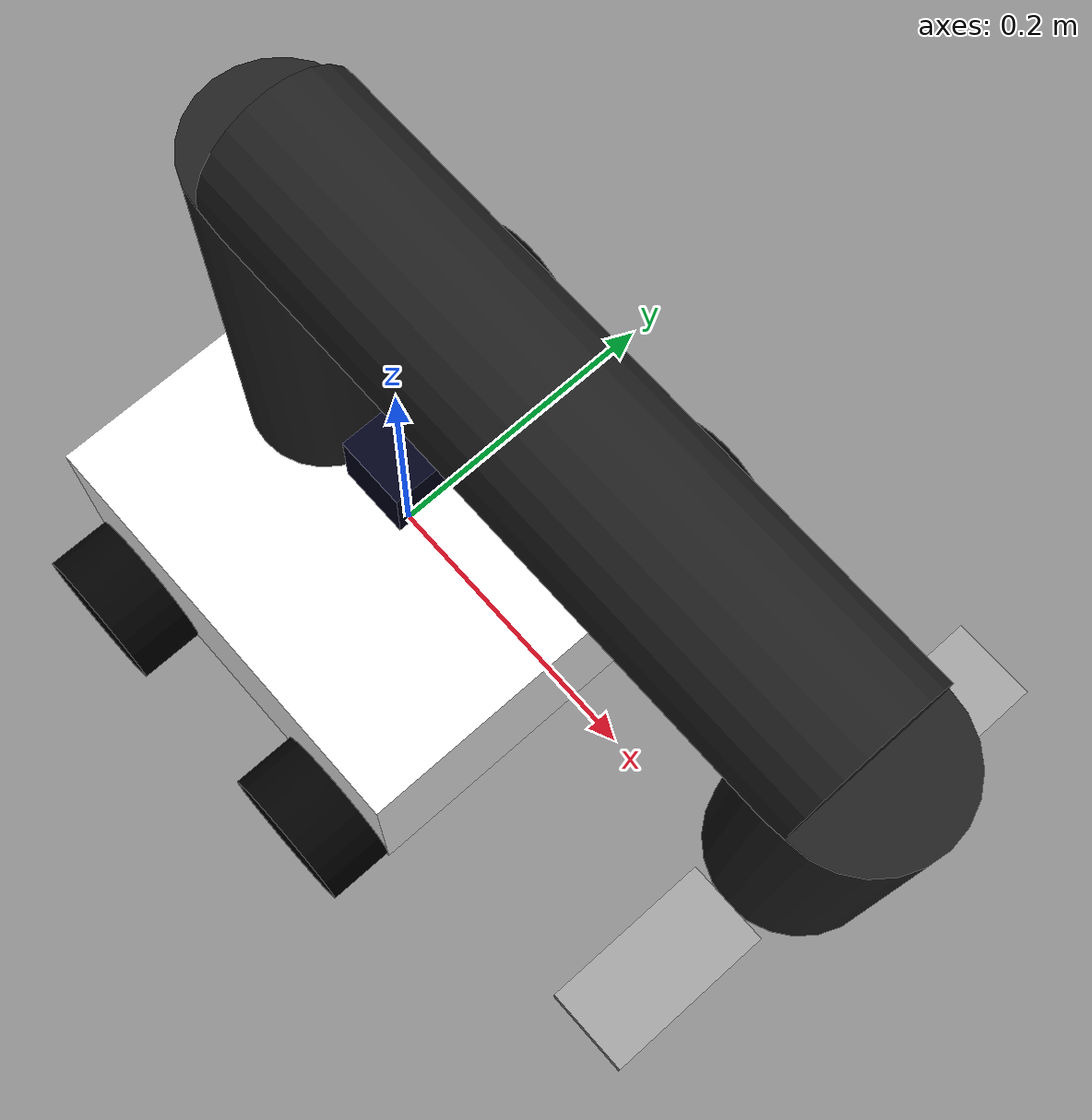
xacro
<?xml version="1.0"?>
<robot name="mobilearmbot" xmlns:xacro="http://ros.org/wiki/xacro">

	<xacro:include filename="$(find mobilearmbot_description)/urdf/colours.xacro"/>
	<xacro:include filename="$(find mobilearmbot_description)/urdf/mobilearmbot.gazebo.xacro"/>
	<xacro:include filename="$(find mobilearmbot_description)/urdf/inertias.xacro"/>

	<!-- Constants for drivebase -->
	<xacro:property name="base_length" value="0.3"/>
	<xacro:property name="base_width" value="0.3"/>
	<xacro:property name="base_height" value="0.15"/>
	<xacro:property name="base_mass" value="3.0"/>

	<!-- Constants & definition for the four wheels -->
	<xacro:property name="wheel_diam" value="0.1"/>
	<xacro:property name="wheel_length" value="0.05"/>
	<xacro:property name="wheel_mass" value="1"/>
	<xacro:property name="wheel_base_offset" value="0.02"/>
	<xacro:property name="pi" value="3.1415"/>
	<xacro:property name="wheel_df" value="0.0"/>

	<xacro:macro name="wheel_link_description">
		<visual>
			<origin rpy="${pi/2} 0 0" xyz="0 0 0"/>
			<geometry>
				<cylinder length="${wheel_length}" radius="${wheel_diam/2.0}"/>
			</geometry>
			<material name="black"/>
		</visual>
		<collision>
			<origin rpy="${pi/2} 0 0" xyz="0 0 0"/>
			<geometry>
				<cylinder length="${wheel_length}" radius="${wheel_diam/2.0}"/>
			</geometry>
		</collision>
		<inertial>
			<mass value="${wheel_mass}"/>
			<xacro:cylinder_inertia mass="${wheel_mass}" length="${wheel_length}" radius="${wheel_diam/2.0}"/>
		</inertial>
	</xacro:macro>

	<!-- Constants for laser scan-->
	<xacro:property name="scan_length" value="0.05"/>
	<xacro:property name="scan_width" value="0.05"/>
	<xacro:property name="scan_height" value="0.05"/>
	<xacro:property name="scan_mass" value="0.1"/>

	<!-- Constants for arm links -->
	<xacro:property name="link_radii" value="0.05"/> <!-- All links will have the same radius -->
	<xacro:property name="arm_link1_length" value="0.3"/>
	<xacro:property name="arm_link2_length" value="0.4"/>
	<xacro:property name="arm_link1_mass" value="1.2"/>
	<xacro:property name="arm_link2_mass" value="1.6"/>
	<xacro:property name="arm_link3_length" value="0.2"/>
	<xacro:property name="arm_link3_mass" value="0.8"/>

	<!-- this is used wherever necessary for all joints -->
	<xacro:macro name="Transmission" params="joint">
		<transmission name="trans_${joint}">
			<type>transmission_interface/SimpleTransmission</type>
			<joint name="${joint}">
				<hardwareInterface>hardware_interface/PositionJointInterface</hardwareInterface>
			</joint>
			<actuator name="${joint}_motor">
				<hardwareInterface>hardware_interface/PositionJointInterface</hardwareInterface>
				<mechanicalReduction>1</mechanicalReduction>
			</actuator>
		</transmission>
	</xacro:macro>

	<!-- Constants for end effector -->
	<xacro:property name="end_effector_length" value="0.1"/>
	<xacro:property name="end_effector_width" value="0.05"/>
	<xacro:property name="end_effector_height" value="0.01"/>
	<xacro:property name="end_effector_mass" value="0.1"/>

	<!--Fixed Frame-->
	<link name="odom">
	</link>

	<!-- Base link -->
	<link name="base_link">
		<visual>
			<origin rpy="0 0 0" xyz="0 0 0"/>
			<geometry>
				<box size="${base_length} ${base_width} ${base_height}"/>
			</geometry>
			<material name="white"/>
		</visual>
		<collision>
			<origin rpy="0 0 0" xyz="0 0 0"/>
			<geometry>
				<box size="${base_length} ${base_width} ${base_height}"/>
			</geometry>
		</collision>
		<inertial>
			<mass value="${base_mass}"/>
			<xacro:box_inertia mass="${base_mass}" length="${base_length}" width="${base_width}" height="${base_height}"/>
		</inertial>
	</link>
	<joint name="odom_joint" type="fixed">
		<parent link="odom"/>
		<child link="base_link"/>
	</joint>

	<!-- Right front wheel -->
	<link name="right_front_wheel">
		<xacro:wheel_link_description />
	</link>
	<joint name="right_front_wheel_joint" type="continuous">
		<parent link="base_link"/>
		<child link="right_front_wheel"/>
		<origin xyz="${base_length/3.0} ${-base_width/2.0 - wheel_base_offset} ${-base_height/2.5}" rpy="0 0 0"/>
		<axis xyz="0 1 0"/>
		<dynamics damping="${wheel_df}"/>
	</joint>
	<xacro:Transmission joint="right_front_wheel_joint"/>

	<!-- Right back wheel -->
	<link name="right_back_wheel">
		<xacro:wheel_link_description />
	</link>
	<joint name="right_back_wheel_joint" type="continuous">
		<parent link="base_link"/>
		<child link="right_back_wheel"/>
		<origin xyz="${-base_length/3.0} ${-base_width/2.0 - wheel_base_offset} ${-base_height/2.5}" rpy="0 0 0"/>
		<axis xyz="0 1 0"/>
		<dynamics damping="${wheel_df}"/>
	</joint>
	<xacro:Transmission joint="right_back_wheel_joint"/>

	<!-- Left front wheel -->
	<link name="left_front_wheel">
		<xacro:wheel_link_description />
	</link>
	<joint name="left_front_wheel_joint" type="continuous">
		<parent link="base_link"/>
		<child link="left_front_wheel"/>
		<origin xyz="${base_length/3.0} ${base_width/2.0 + wheel_base_offset} ${-base_height/2.5}" rpy="0 0 0"/>
		<axis xyz="0 1 0"/>
		<dynamics damping="${wheel_df}"/>
	</joint>
	<xacro:Transmission joint="left_front_wheel_joint"/>

	<!-- Left back wheel -->
	<link name="left_back_wheel">
		<xacro:wheel_link_description />
	</link>
	<joint name="left_back_wheel_joint" type="continuous">
		<parent link="base_link"/>
		<child link="left_back_wheel"/>
		<origin xyz="${-base_length/3.0} ${base_width/2.0 + wheel_base_offset} ${-base_height/2.5}" rpy="0 0 0"/>
		<axis xyz="0 1 0"/>
		<dynamics damping="${wheel_df}"/>
	</joint>
	<xacro:Transmission joint="left_back_wheel_joint"/>

	<link name="base_scan">
		<visual>
			<origin rpy="0 0 0" xyz="0 0 0"/>
			<geometry>
				<box size="${scan_length} ${scan_width} ${scan_height}"/>
			</geometry>
			<material name="blue"/>
		</visual>
		<collision>
			<origin rpy="0 0 0" xyz="0 0 0"/>
			<geometry>
				<box size="${scan_length} ${scan_width} ${scan_height}"/>
			</geometry>
		</collision>
		<inertial>
			<mass value="${scan_mass}"/>
			<xacro:box_inertia mass="${scan_mass}" length="${scan_length}" width="${scan_width}" height="${scan_height}"/>
		</inertial>
	</link>
	<joint name="base_scan_joint" type="fixed">
		<parent link="base_link"/>
		<child link="base_scan"/>
		<origin xyz="0.0 0 ${scan_height/2.0 + base_height/2.0}" rpy="0 0 0"/>
	</joint>

	<link name="arm_link1">
		<visual>
			<origin rpy="0 0 0" xyz="0 0 ${arm_link1_length/2.0}"/>
			<geometry>
				<cylinder length="${arm_link1_length}" radius="${link_radii}"/>
			</geometry>
		</visual>
		<collision>
			<origin rpy="0 0 0" xyz="0 0 ${arm_link1_length/2.0}"/>
			<geometry>
				<cylinder length="${arm_link1_length}" radius="${link_radii}"/>
			</geometry>
		</collision>
		<inertial>
			<mass value="${arm_link1_mass}"/>
			<xacro:cylinder_inertia mass="${arm_link1_mass}" length="${arm_link1_length}" radius="${link_radii}"/>
		</inertial>
	</link>
	<joint name="arm_link1_joint" type="continuous">
		<parent link="base_link"/>
		<child link="arm_link1"/>
		<origin rpy="0 0 0" xyz="${-base_height/2.0} 0 ${base_height/2.0}"/>
		<axis xyz="0 0 1"/>
	</joint>
	<xacro:Transmission joint="arm_link1_joint"/>

	<link name="arm_link2">
		<visual>
			<origin rpy="0 0 0" xyz="0 0 ${arm_link2_length/2.0}"/>
			<geometry>
				<cylinder length="${arm_link2_length}" radius="${link_radii}"/>
			</geometry>
		</visual>
		<collision>
			<origin rpy="0 0 0" xyz="0 0 ${arm_link2_length/2.0}"/>
			<geometry>
				<cylinder length="${arm_link2_length}" radius="${link_radii}"/>
			</geometry>
		</collision>
		<inertial>
			<mass value="${arm_link2_mass}"/>
			<xacro:cylinder_inertia mass="${arm_link2_mass}" length="${arm_link2_length}" radius="${link_radii}"/>
		</inertial>
	</link>

	<joint name="arm_link2_joint" type="continuous">
		<parent link="arm_link1"/>
		<child link="arm_link2"/>
		<origin rpy="0 ${pi/2} 0" xyz="0 0 ${arm_link1_length}"/>
		<axis xyz="0 1 0"/>
	</joint>
	<xacro:Transmission joint="arm_link2_joint"/>

	<link name="arm_link3">
		<visual>
			<origin rpy="0 0 0" xyz="0 0 ${arm_link3_length/2.0}"/>
			<geometry>
				<cylinder length="${arm_link3_length}" radius="${link_radii}"/>
			</geometry>
		</visual>
		<collision>
			<origin rpy="0 0 0" xyz="0 0 ${arm_link3_length/2.0}"/>
			<geometry>
				<cylinder length="${arm_link3_length}" radius="${link_radii}"/>
			</geometry>
		</collision>
		<inertial>
			<mass value="${arm_link3_mass}"/>
			<xacro:cylinder_inertia mass="${arm_link3_mass}" length="${arm_link3_length}" radius="${link_radii}"/>
		</inertial>
	</link>
	<joint name="arm_link3_joint" type="continuous">
		<parent link="arm_link2"/>
		<child link="arm_link3"/>
		<origin rpy="0 ${pi/2} 0" xyz="0 0 ${arm_link2_length}"/>
		<axis xyz="0 1 0"/>
	</joint>
	<xacro:Transmission joint="arm_link3_joint"/>

	<link name="left_end_effector">
		<visual>
			<origin rpy="${pi/2} ${pi/2} 0" xyz="0 0 ${end_effector_length/2}"/>
			<geometry>
				<box size="${end_effector_length} ${end_effector_width} ${end_effector_height}"/>
			</geometry>
		</visual>
		<collision>
			<origin rpy="${pi/2} ${pi/2} 0" xyz="0 0 ${end_effector_length/2}"/>
			<geometry>
				<box size="${end_effector_length} ${end_effector_width} ${end_effector_height}"/>
			</geometry>
		</collision>
		<inertial>
			<mass value="${end_effector_mass}"/>
			<xacro:box_inertia mass="${end_effector_mass}" length="${end_effector_length}" width="${end_effector_width}" height="${end_effector_height}"/>
		</inertial>
	</link>

	<joint name="left_end_effector_joint" type="continuous">
		<parent link="arm_link3"/>
		<child link="left_end_effector"/>
		<origin rpy="${-pi/2} 0 0" xyz="0 ${link_radii} ${arm_link3_length}"/>
		<axis xyz="1 0 0"/>
	</joint>
	<xacro:Transmission joint="left_end_effector_joint"/>

	<link name="right_end_effector">
		<visual>
			<origin rpy="${pi/2} ${pi/2} 0" xyz="0 0 ${end_effector_length/2}"/>
			<geometry>
				<box size="${end_effector_length} ${end_effector_width} ${end_effector_height}"/>
			</geometry>
		</visual>
		<collision>
                        <origin rpy="${pi/2} ${pi/2} 0" xyz="0 0 ${end_effector_length/2}"/>
                        <geometry>
                                <box size="${end_effector_length} ${end_effector_width} ${end_effector_height}"/>
                        </geometry>
		</collision>
                <inertial>
                        <mass value="${end_effector_mass}"/>
                        <xacro:box_inertia mass="${end_effector_mass}" length="${end_effector_length}" width="${end_effector_width}" height="${end_effector_height}"/>
                </inertial>
	</link>

	<joint name="right_end_effector_joint" type="continuous">
		<parent link="arm_link3"/>
		<child link="right_end_effector"/>
		<origin rpy="${pi/2} 0 0" xyz="0 ${-link_radii} ${arm_link3_length}"/>
		<axis xyz="1 0 0"/>
	</joint>
	<xacro:Transmission joint="right_end_effector_joint"/>
</robot>

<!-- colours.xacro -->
<robot name="colours" xmlns:xacro="http://ros.org/wiki/xacro">
        <material name ="blue">
                <color rgba="0 0 0.1 1"/>
        </material>

        <material name="black">
                <color rgba="0 0 0 1"/>
        </material>

        <material name="white">
                <color rgba="1 1 1 1"/>
        </material>
</robot>
